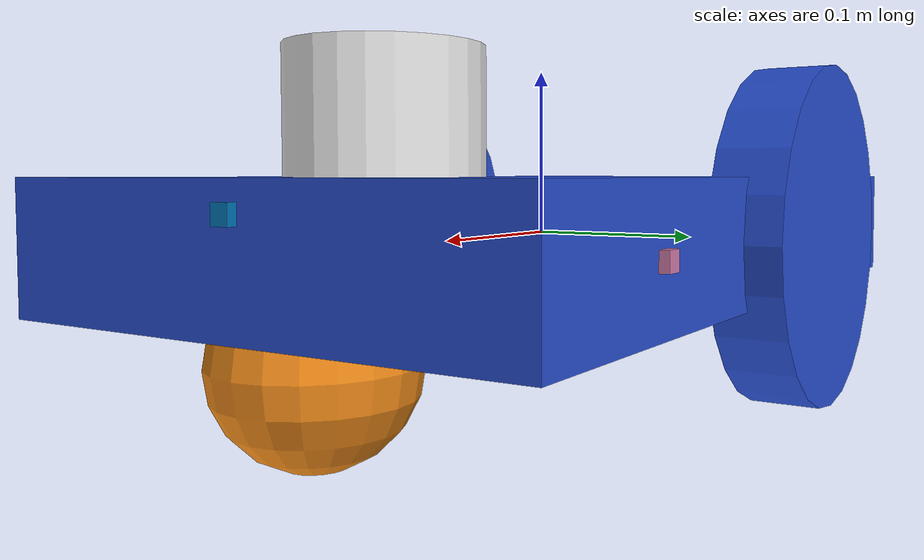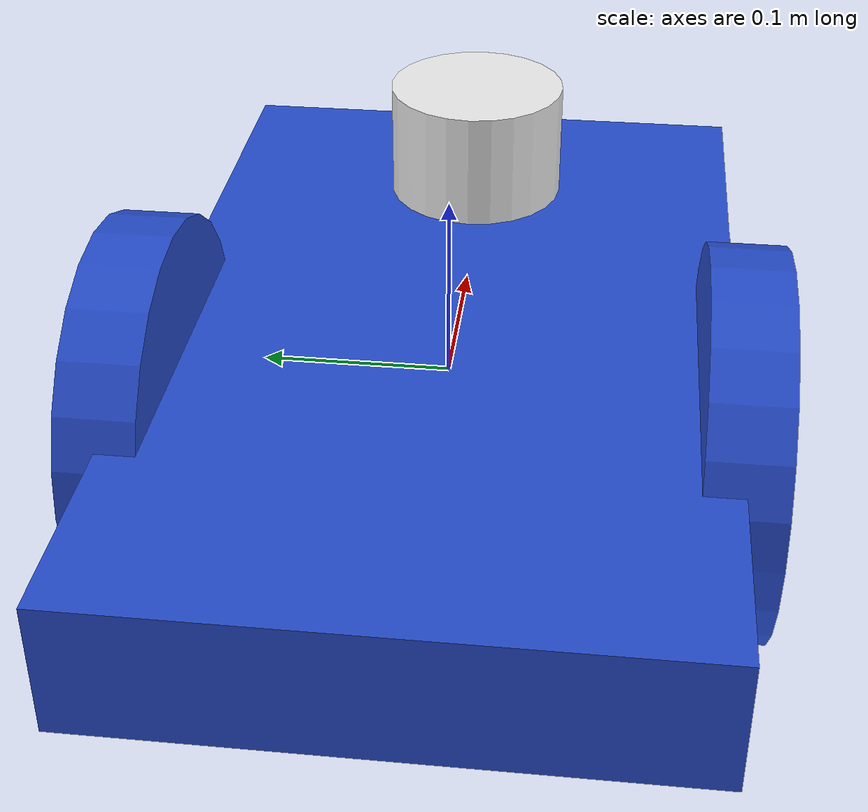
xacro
<?xml version="1.0" ?>

<robot name="m2wr" xmlns:xacro="https://www.ros.org/wiki/xacro" >

  <xacro:include filename="$(find robot3us_sim)/urdf/materials.xacro" />
  <xacro:include filename="$(find robot3us_sim)/urdf/gazebo.xacro" />
  <xacro:include filename="$(find robot3us_sim)/urdf/macro.xacro" />

  <!-- Defining link chassis -->
  <link name="link_chassis_rb3">
    <!-- pose and inertial -->
    <pose>0 0 0.1 0 0 0</pose>

    <!-- Inertial properties -->
    <inertial>
      <mass value="5"/>
      <origin rpy="0 0 0" xyz="0 0 0.1"/>
      <inertia ixx="0.0395416666667" ixy="0" ixz="0" iyy="0.106208333333" iyz="0" izz="0.106208333333"/>
    </inertial>
    <!-- Collision properties -->
    <collision name="collision_chassis">
      <geometry>
        <box size="0.5 0.3 0.07"/>
      </geometry>
    </collision>
    <!-- Visual properties -->
    <visual>
      <origin rpy="0 0 0" xyz="0 0 0"/>
      <geometry>
        <box size="0.5 0.3 0.07"/>
      </geometry>
      <material name="blue"/>
    </visual>

    <!-- caster front -->
    <collision name="caster_front_collision">
      <origin rpy=" 0 0 0" xyz="0.35 0 -0.05"/>
      <geometry>
        <sphere radius="0.05"/>
      </geometry>
      <surface>
        <friction>
          <ode>
            <mu>0</mu>
            <mu2>0</mu2>
            <slip1>1.0</slip1>
            <slip2>1.0</slip2>
          </ode>
        </friction>
      </surface>
    </collision>
    <visual name="caster_front_visual">
      <origin rpy=" 0 0 0" xyz="0.2 0 -0.05"/>
      <geometry>
        <sphere radius="0.05"/>
      </geometry>
    </visual>
    </link>

  <!--
    Replace the wheel links with the following lines for macros:
  -->
  <xacro:link_wheel name="link_right_wheel" />
  <xacro:link_wheel name="link_left_wheel" />

  <xacro:joint_wheel name="joint_right_wheel"  child="link_right_wheel"  origin_xyz="-0.05 0.15 0"  />
  <xacro:joint_wheel name="joint_left_wheel"   child="link_left_wheel"   origin_xyz="-0.05 -0.15 0"  />

  <!--
    Adding a laser scan sensor to the robot
  -->
  <link name="sensor_laser">
    <inertial>
      <origin xyz="0 0 0" rpy="0 0 0" />
      <mass value="1" />
      <!-- RANDOM INERTIA BELOW -->

      <xacro:cylinder_inertia mass="1" r="0.05" l="0.1" />

    </inertial>

    <visual>
      <origin xyz="0 0 0" rpy="0 0 0" />
      <geometry>
        <cylinder radius="0.05" length="0.1"/>
      </geometry>
      <material name="white" />
    </visual>

    <collision>
      <origin xyz="0 0 0" rpy="0 0 0"/>
      <geometry>
        <cylinder radius="0.05" length="0.1"/>
      </geometry>
    </collision>
  </link>

   <link name="sensor_us_link_front">
    <collision>
      <origin xyz="0 0 0" rpy="0 0 0"/>
      <geometry>
        <box size="0.01 0.01 0.01"/>
      </geometry>
    </collision>
    <visual>
      <origin xyz="0 0 0" rpy="0 0 0"/>
      <geometry>
        <box size="0.01 0.01 0.01"/>
      </geometry>
    </visual>
    <inertial>
      <mass value="1e-5" />
      <origin xyz="0 0 0" rpy="0 0 0"/>
      <inertia ixx="1e-6" ixy="0" ixz="0" iyy="1e-6" iyz="0" izz="1e-6" />
    </inertial>
    <collision>
      <origin xyz="0 0 0" rpy="0 0 0"/>
      <geometry>
      <box size="0.01 0.01 0.01"/>
      </geometry>
    </collision>
</link>

<link name="sensor_us_link_right">
    <collision>
      <origin xyz="0 0 0" rpy="0 0 0"/>
      <geometry>
        <box size="0.01 0.01 0.01"/>
      </geometry>
    </collision>
    <visual>
      <origin xyz="0 0 0" rpy="0 0 0"/>
      <geometry>
        <box size="0.01 0.01 0.01"/>
      </geometry>
    </visual>
    <inertial>
      <mass value="1e-5" />
      <origin xyz="0 0 0" rpy="0 0 0"/>
      <inertia ixx="1e-6" ixy="0" ixz="0" iyy="1e-6" iyz="0" izz="1e-6" />
    </inertial>
    <collision>
      <origin xyz="0 0 0" rpy="0 0 0"/>
      <geometry>
      <box size="0.01 0.01 0.01"/>
      </geometry>
    </collision>
</link>

<link name="sensor_us_link_left">
    <collision>
      <origin xyz="0 0 0" rpy="0 0 0"/>
      <geometry>
        <box size="0.01 0.01 0.01"/>
      </geometry>
    </collision>
    <visual>
      <origin xyz="0 0 0" rpy="0 0 0"/>
      <geometry>
        <box size="0.01 0.01 0.01"/>
      </geometry>
    </visual>
    <inertial>
      <mass value="1e-5" />
      <origin xyz="0 0 0" rpy="0 0 0"/>
      <inertia ixx="1e-6" ixy="0" ixz="0" iyy="1e-6" iyz="0" izz="1e-6" />
    </inertial>
    <collision>
      <origin xyz="0 0 0" rpy="0 0 0"/>
      <geometry>
      <box size="0.01 0.01 0.01"/>
      </geometry>
    </collision>
</link>

  <joint name="joint_sensor_laser" type="fixed">
    <origin xyz="0.15 0 0.05" rpy="0 0 0"/>
    <parent link="link_chassis_rb3"/>
    <child link="sensor_laser"/>
  </joint>

   <joint name="joint_sensor_us_front" type="fixed">
    <origin xyz="0.25 0 0.02" rpy="0 0 0"/>
    <parent link="link_chassis_rb3"/>
    <child link="sensor_us_link_front"/>
  </joint>

   <joint name="joint_sensor_us_left" type="fixed">
    <origin xyz="0.15 0.15 0" rpy="0 0 1.57"/>
    <parent link="link_chassis_rb3"/>
    <child link="sensor_us_link_left"/>
  </joint>

   <joint name="joint_sensor_us_right" type="fixed">
    <origin xyz="0.15 -0.15 0" rpy="0 0 -1.57"/>
    <parent link="link_chassis_rb3"/>
    <child link="sensor_us_link_right"/>
  </joint>

  <gazebo reference="sensor_us_link_front">
   <sensor type="ray" name="TeraRanger">
      <pose>0 0 0 0 0 0</pose>
      <visualize>true</visualize>
      <update_rate>50</update_rate>
      <ray>
         <scan>
            <horizontal>
               <samples>10</samples>
               <resolution>1</resolution>
               <min_angle>-0.40835</min_angle>
               <max_angle>0.40835</max_angle>
            </horizontal>
            <vertical>
               <samples>5</samples>
               <resolution>1</resolution>
               <min_angle>-0.05</min_angle>
               <max_angle>0.05</max_angle>
            </vertical>
         </scan>
         <range>
            <min>0.01</min>
            <max>2</max>
            <resolution>0.02</resolution>
         </range>
      </ray>
      <plugin filename="libgazebo_ros_range.so" name="gazebo_ros_range">
         <gaussianNoise>0.005</gaussianNoise>
         <alwaysOn>true</alwaysOn>
         <updateRate>50</updateRate>
         <topicName>us_sensor_front</topicName>
         <frameName>sensor_us_link_front</frameName>
         <radiation>SONAR</radiation>
         <fov>0.2967</fov>
      </plugin>
   </sensor>
   </gazebo>

   <gazebo reference="sensor_us_link_right">
   <sensor type="ray" name="TeraRanger">
      <pose>0 0 0 0 0 0</pose>
      <visualize>true</visualize>
      <update_rate>50</update_rate>
      <ray>
         <scan>
            <horizontal>
               <samples>10</samples>
               <resolution>1</resolution>
               <min_angle>-0.14835</min_angle>
               <max_angle>0.14835</max_angle>
            </horizontal>
            <vertical>
               <samples>5</samples>
               <resolution>1</resolution>
               <min_angle>-0.05</min_angle>
               <max_angle>0.05</max_angle>
            </vertical>
         </scan>
         <range>
            <min>0.01</min>
            <max>2</max>
            <resolution>0.02</resolution>
         </range>
      </ray>
      <plugin filename="libgazebo_ros_range.so" name="gazebo_ros_range">
         <gaussianNoise>0.005</gaussianNoise>
         <alwaysOn>true</alwaysOn>
         <updateRate>50</updateRate>
         <topicName>us_sensor_right</topicName>
         <frameName>sensor_us_link_right</frameName>
         <radiation>SONAR</radiation>
         <fov>0.2967</fov>
      </plugin>
   </sensor>
   </gazebo>

   <gazebo reference="sensor_us_link_left">
   <sensor type="ray" name="TeraRanger">
      <pose>0 0 0 0 0 0</pose>
      <visualize>true</visualize>
      <update_rate>50</update_rate>
      <ray>
         <scan>
            <horizontal>
               <samples>10</samples>
               <resolution>1</resolution>
               <min_angle>-0.14835</min_angle>
               <max_angle>0.14835</max_angle>
            </horizontal>
            <vertical>
               <samples>5</samples>
               <resolution>1</resolution>
               <min_angle>-0.05</min_angle>
               <max_angle>0.05</max_angle>
            </vertical>
         </scan>
         <range>
            <min>0.01</min>
            <max>2</max>
            <resolution>0.02</resolution>
         </range>
      </ray>
      <plugin filename="libgazebo_ros_range.so" name="gazebo_ros_range">
         <gaussianNoise>0.005</gaussianNoise>
         <alwaysOn>true</alwaysOn>
         <updateRate>50</updateRate>
         <topicName>us_sensor_left</topicName>
         <frameName>sensor_us_link_left</frameName>
         <radiation>SONAR</radiation>
         <fov>0.2967</fov>
      </plugin>
   </sensor>
   </gazebo>

</robot>

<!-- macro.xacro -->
<!--
  we will use macros, which are like functions, to reduce the remaining code in m2wr.xacro file.
-->
<robot xmlns:xacro="http://www.ros.org/wiki/xacro">
    <xacro:macro name="link_wheel" params="name">
        <link name="${name}">
            <inertial>
              <mass value="0.2"/>
              <origin rpy="0 1.5707 1.5707" xyz="0 0 0"/>
              <inertia ixx="0.000526666666667" ixy="0" ixz="0" iyy="0.000526666666667" iyz="0" izz="0.001"/>
            </inertial>
            <collision name="link_right_wheel_collision">
              <origin rpy="0 1.5707 1.5707" xyz="0 0 0"/>
              <geometry>
                <cylinder length="0.04" radius="0.1"/>
              </geometry>
            </collision>
            <visual name="${name}_visual">
              <origin rpy="0 1.5707 1.5707" xyz="0 0 0"/>
              <geometry>
                <cylinder length="0.04" radius="0.1"/>
              </geometry>
            </visual>
        </link>
    </xacro:macro>

    <!--
      The second macro accepts three parameters name, child and origin_xyz and it creates a joint link.
    -->
    <xacro:macro name="joint_wheel" params="name child origin_xyz">
      <joint name="${name}" type="continuous">
        <origin rpy="0 0 0" xyz="${origin_xyz}"/>
        <child link="${child}"/>
        <parent link="link_chassis_rb3"/>
        <axis rpy="0 0 0" xyz="0 1 0"/>
        <limit effort="10000" velocity="1000"/>
        <joint_properties damping="1.0" friction="1.0"/>
      </joint>
    </xacro:macro>

    <!--
      new macro for controlling the moment of inertia of the sensor cilinder
    -->
    <xacro:macro name="cylinder_inertia" params="mass r l">
      <inertia ixx="${mass*(3*r*r+l*l)/12}" ixy = "0" ixz = "0" iyy="${mass*(3*r*r+l*l)/12}" iyz = "0" izz="${mass*(r*r)/2}" />
    </xacro:macro>

</robot>
